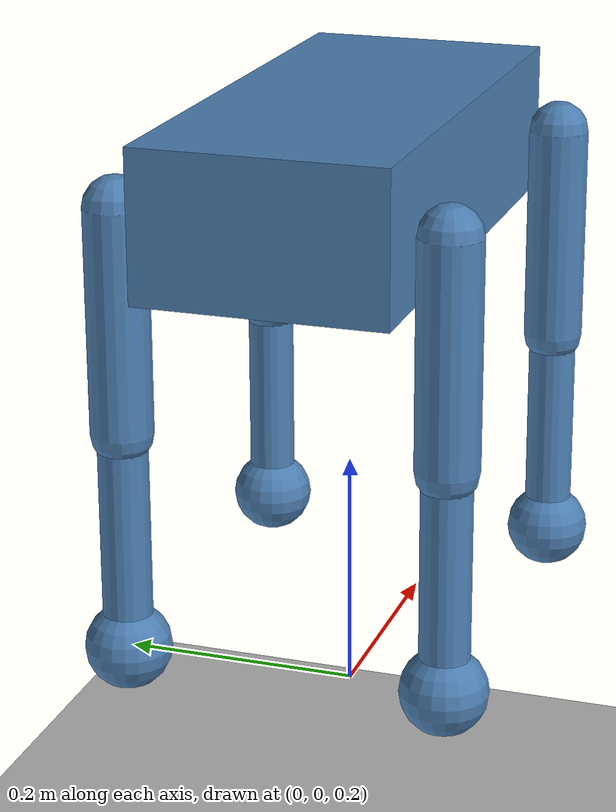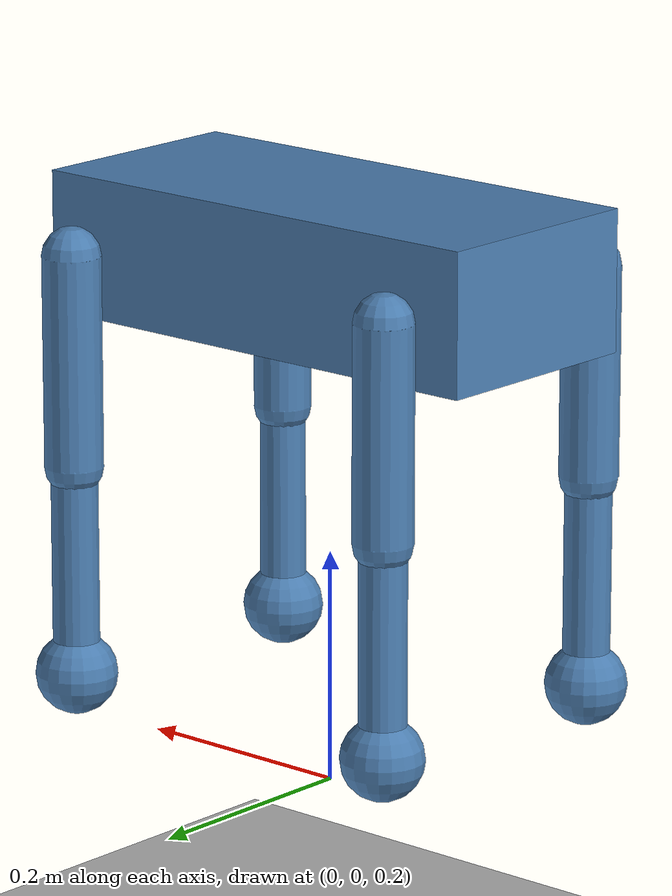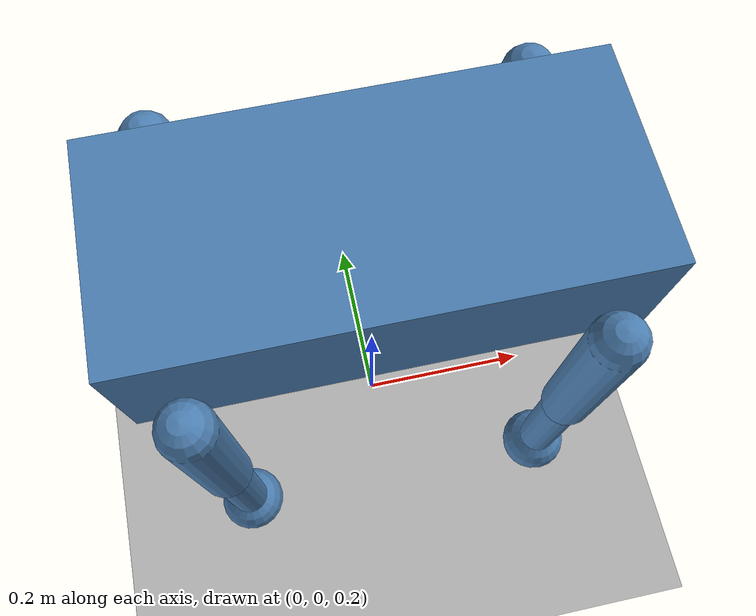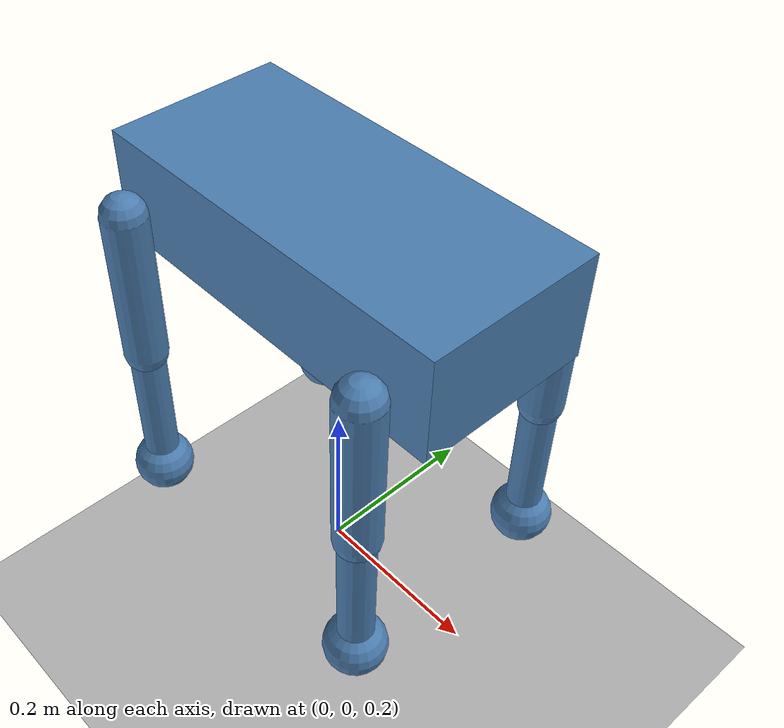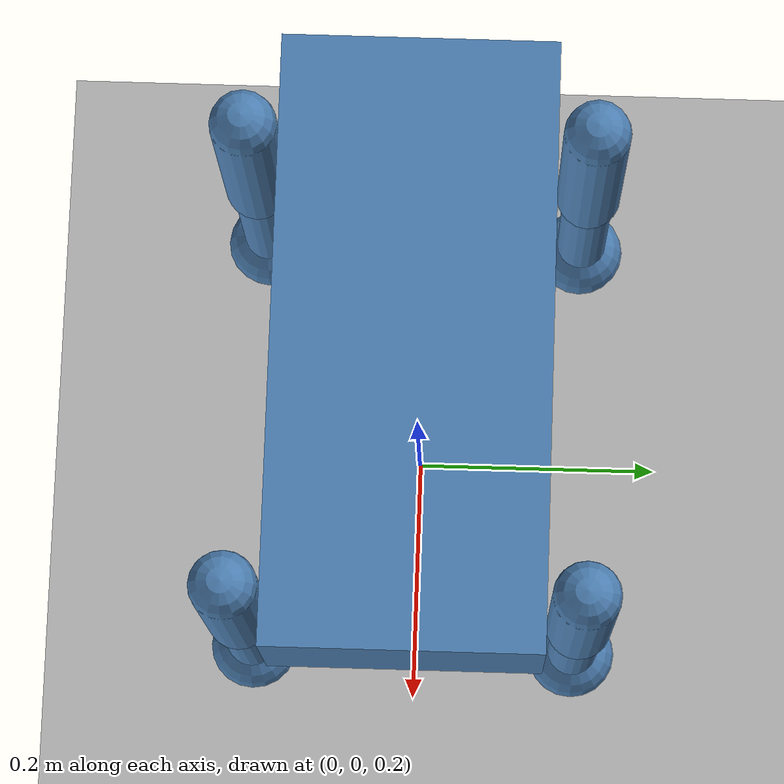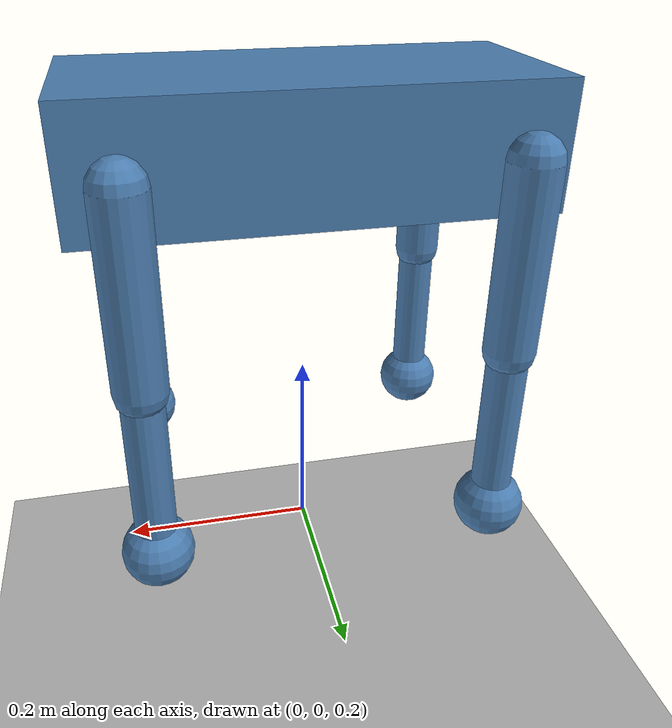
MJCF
<mujoco model="quadruped_drop_fixture">
  <!-- Synthetic contact fixture, not a validated robot or walking controller. -->
  <compiler angle="radian"/>
  <option timestep="0.001" integrator="implicitfast"/>
  <default>
    <joint type="hinge" axis="0 1 0" damping="0.2" armature="0.01" limited="true" range="-1.5 1.5"/>
    <geom friction="0.8 0.005 0.0001" rgba="0.3 0.5 0.7 1"/>
  </default>
  <worldbody>
    <geom name="floor" type="plane" size="3 3 .1" rgba="0.7 0.7 0.7 1"/>
    <body name="trunk" pos="0 0 .65">
      <freejoint name="floating_base"/>
      <geom type="box" size=".22 .10 .06" mass="4"/>
      <body name="front_left_upper" pos=".17 .13 0">
        <joint name="front_left_hip"/>
        <geom type="capsule" fromto="0 0 0 0 0 -.18" size=".025" mass=".3"/>
        <body name="front_left_lower" pos="0 0 -.18">
          <joint name="front_left_knee"/>
          <geom type="capsule" fromto="0 0 0 0 0 -.18" size=".02" mass=".2"/>
          <geom name="front_left_foot" type="sphere" pos="0 0 -.18" size=".035" mass=".05"/>
        </body>
      </body>
      <body name="front_right_upper" pos=".17 -.13 0">
        <joint name="front_right_hip"/>
        <geom type="capsule" fromto="0 0 0 0 0 -.18" size=".025" mass=".3"/>
        <body name="front_right_lower" pos="0 0 -.18">
          <joint name="front_right_knee"/>
          <geom type="capsule" fromto="0 0 0 0 0 -.18" size=".02" mass=".2"/>
          <geom name="front_right_foot" type="sphere" pos="0 0 -.18" size=".035" mass=".05"/>
        </body>
      </body>
      <body name="rear_left_upper" pos="-.17 .13 0">
        <joint name="rear_left_hip"/>
        <geom type="capsule" fromto="0 0 0 0 0 -.18" size=".025" mass=".3"/>
        <body name="rear_left_lower" pos="0 0 -.18">
          <joint name="rear_left_knee"/>
          <geom type="capsule" fromto="0 0 0 0 0 -.18" size=".02" mass=".2"/>
          <geom name="rear_left_foot" type="sphere" pos="0 0 -.18" size=".035" mass=".05"/>
        </body>
      </body>
      <body name="rear_right_upper" pos="-.17 -.13 0">
        <joint name="rear_right_hip"/>
        <geom type="capsule" fromto="0 0 0 0 0 -.18" size=".025" mass=".3"/>
        <body name="rear_right_lower" pos="0 0 -.18">
          <joint name="rear_right_knee"/>
          <geom type="capsule" fromto="0 0 0 0 0 -.18" size=".02" mass=".2"/>
          <geom name="rear_right_foot" type="sphere" pos="0 0 -.18" size=".035" mass=".05"/>
        </body>
      </body>
    </body>
  </worldbody>
</mujoco>
